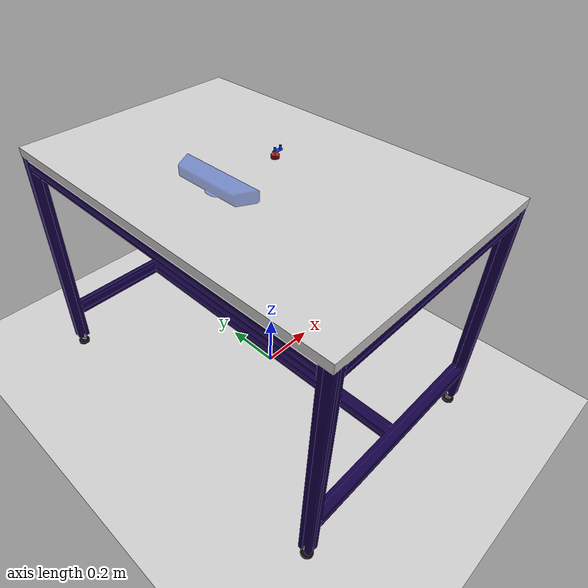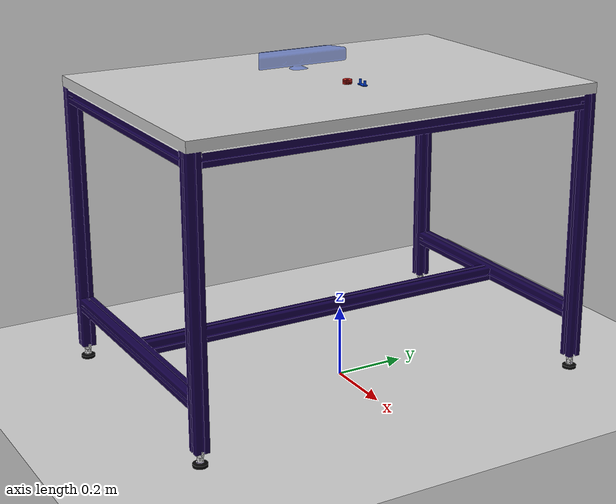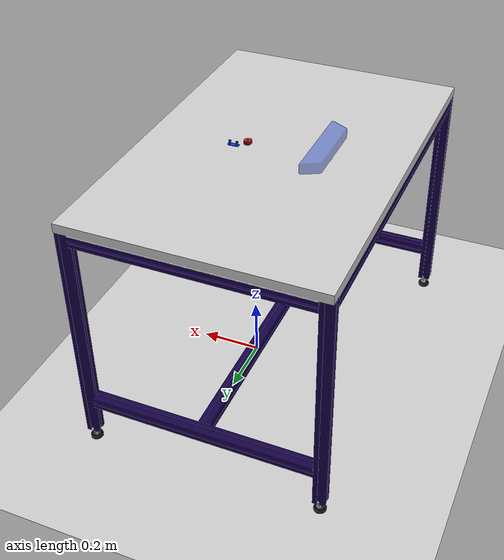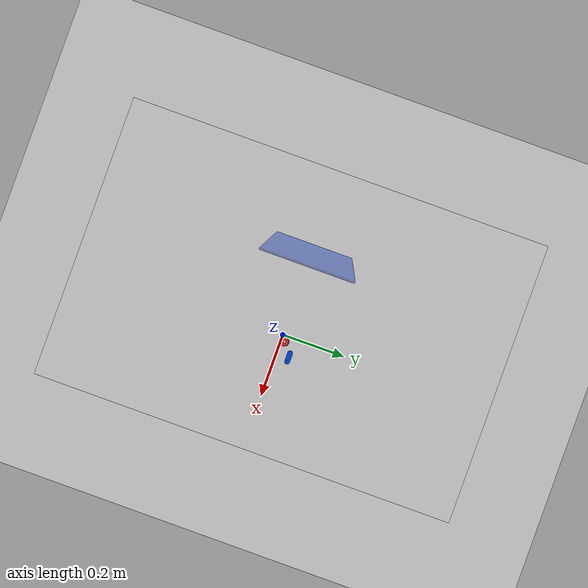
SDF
<?xml version="1.0" ?>
<sdf version='1.6'>
  <world name='default'>

    <!-- Main light Source-->
    <light name='sun' type='directional'>
      <cast_shadows>1</cast_shadows>
      <pose frame=''>0 0 10 0 -0 0</pose>
      <diffuse>0.8 0.8 0.8 1</diffuse>
      <specular>0.1 0.1 0.1 1</specular>
      <attenuation>
        <range>1000</range>
        <constant>0.9</constant>
        <linear>0.01</linear>
        <quadratic>0.001</quadratic>
      </attenuation>
      <direction>-0.5 0.5 -1</direction>
    </light>

    <!-- Ground plane-->
    <model name='ground_plane'>
      <static>1</static>
      <link name='link'>
        <collision name='collision'>
          <geometry>
            <plane>
              <normal>0 0 1</normal>
              <size>100 100</size>
            </plane>
          </geometry>
          <surface>
            <friction>
              <ode>
                <mu>100</mu>
                <mu2>50</mu2>
              </ode>
              <torsional>
                <ode/>
              </torsional>
            </friction>
            <contact>
              <ode/>
            </contact>
            <bounce/>
          </surface>
          <max_contacts>10</max_contacts>
        </collision>
        <visual name='visual'>
          <cast_shadows>0</cast_shadows>
          <geometry>
            <plane>
              <normal>0 0 1</normal>
              <size>100 100</size>
            </plane>
          </geometry>
          <material>
            <script>
              <uri>file://media/materials/scripts/gazebo.material</uri>
              <name>Gazebo/Grey</name>
            </script>
          </material>
        </visual>
        <self_collide>0</self_collide>
        <kinematic>0</kinematic>
        <gravity>1</gravity>
      </link>
    </model>

    <!-- Other settings-->
    <gravity>0 0 -9.8</gravity>
    <magnetic_field>6e-06 2.3e-05 -4.2e-05</magnetic_field>
    <atmosphere type='adiabatic'/>
    <physics name='default_physics' default='0' type='ode'>
      <max_step_size>0.001</max_step_size>
      <real_time_factor>1</real_time_factor>
      <real_time_update_rate>1000</real_time_update_rate>
    </physics>
    <scene>
      <ambient>0.4 0.4 0.4 1</ambient>
      <background>0.7 0.7 0.7 1</background>
      <shadows>1</shadows>
    </scene>
    <spherical_coordinates>
      <surface_model>EARTH_WGS84</surface_model>
      <latitude_deg>0</latitude_deg>
      <longitude_deg>0</longitude_deg>
      <elevation>0</elevation>
      <heading_deg>0</heading_deg>
    </spherical_coordinates>

    <!-- Secondary light Source-->
    <light name='user_point_light_0' type='point'>
      <pose frame=''>0 0 2 0 -0 0</pose>
      <diffuse>0.5 0.5 0.5 1</diffuse>
      <specular>0.1 0.1 0.1 1</specular>
      <attenuation>
        <range>20</range>
        <constant>0.5</constant>
        <linear>0.01</linear>
        <quadratic>0.001</quadratic>
      </attenuation>
      <cast_shadows>0</cast_shadows>
      <direction>0 0 -1</direction>
    </light>

    <model name='kinect_ros'>
      <pose frame=''>-0.20 0 0.87 0 -0 0</pose>
      <link name='link'>
        <inertial>
          <mass>0.1</mass>
        </inertial>
        <collision name='collision'>
          <geometry>
            <box>
              <size>0.073 0.276 0.072</size>
            </box>
          </geometry>
          <max_contacts>10</max_contacts>
          <surface>
            <contact>
              <ode/>
            </contact>
            <bounce/>
            <friction>
              <torsional>
                <ode/>
              </torsional>
              <ode/>
            </friction>
          </surface>
        </collision>
        <visual name='visual'>
          <material>
            <script>
              <name>Gazebo/BlueTransparent</name>
              <uri>file://media/materials/scripts/gazebo.material</uri>
            </script>
          </material>
          <geometry>
            <mesh>
              <uri>model://kinect/meshes/kinect.dae</uri>
            </mesh>
          </geometry>
        </visual>
        <sensor name='camera1' type='depth'>
          <update_rate>20</update_rate>
          <camera name='__default__'>
            <horizontal_fov>1.0472</horizontal_fov>
            <image>
              <width>640</width>
              <height>480</height>
              <format>R8G8B8</format>
            </image>
            <clip>
              <near>0.02</near>
              <far>3</far>
            </clip>
          </camera>
          <plugin name='depth_camera1_plugin' filename='libgazebo_ros_openni_kinect.so'>
            <baseline>0.2</baseline>
            <alwaysOn>true</alwaysOn>
            <updateRate>0.0</updateRate>
            <cameraName>kinect1</cameraName>
            <imageTopicName>color/image_raw</imageTopicName>
            <cameraInfoTopicName>color/camera_info</cameraInfoTopicName>
            <depthImageTopicName>depth/image_raw</depthImageTopicName>
            <depthImageCameraInfoTopicName>color/camera_info</depthImageCameraInfoTopicName>
            <pointCloudTopicName>depth/points</pointCloudTopicName>
            <frameName>kinect1_optical_link</frameName>
            <pointCloudCutoff>0.03</pointCloudCutoff>
            <pointCloudCutoffMax>3</pointCloudCutoffMax>
            <distortionK1>0</distortionK1>
            <distortionK2>0</distortionK2>
            <distortionK3>0</distortionK3>
            <distortionT1>0</distortionT1>
            <distortionT2>0</distortionT2>
            <CxPrime>0</CxPrime>
            <Cx>0</Cx>
            <Cy>0</Cy>
            <focalLength>0</focalLength>
            <hackBaseline>0</hackBaseline>
          </plugin>
        </sensor>
        <self_collide>0</self_collide>
        <kinematic>0</kinematic>
      </link>
      <static>1</static>
      <allow_auto_disable>0</allow_auto_disable>
    </model>

    <!-- Include the objects-->
     <include>
      <uri>model://table1</uri>
      <name>table1</name>
      <pose>-0.475 0 0 0 0 0</pose>
    </include>

     <include>
      <uri>model://left_gear</uri>
      <name>left_gear</name>
      <pose>0 0 0.84 0 0 0</pose>
      <static>1</static>
    </include>

    <include>
      <uri>model://bottom_casing</uri>
      <name>bottom_casing</name>
      <pose>0.03 0.03 0.84 0 0 0</pose>
      <static>1</static>
    </include>

    <gui fullscreen='0'>
      <camera name='user_camera'>
        <pose frame=''>2.16101 -0.608536 1.91511 0 0.589796 2.59702</pose>
        <view_controller>orbit</view_controller>
        <projection_type>perspective</projection_type>
      </camera>
    </gui>
  </world>
</sdf>

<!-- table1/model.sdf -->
<sdf version='1.5'>
  <model name='table1'>
    <static>true</static>
    <link name='table1'>
      <pose frame=''>0 0 0 0 -0 0</pose>
      <inertial>
        <pose frame=''>0 0.04617 0.38 0 -0 0</pose>
        <mass>35.4321</mass>
        <inertia>
          <ixx>1.73083</ixx>
          <ixy>2.01582e-11</ixy>
          <ixz>2.78594e-13</ixz>
          <iyy>5.32936</iyy>
          <iyz>4.32952e-13</iyz>
          <izz>3.81098</izz>
        </inertia>
      </inertial>
      <collision name='table_collision'>
        <pose frame=''>0 0 0 0 -0 0</pose>
        <geometry>
          <mesh>
            <scale>1 1 1</scale>
            <uri>model://table1/meshes/table1.dae</uri>
          </mesh>
        </geometry>
      </collision>
      <visual name='table_visual'>
        <pose frame=''>0 0 0 0 -0 0</pose>
        <geometry>
          <mesh>
            <scale>1 1 1</scale>
            <uri>model://table1/meshes/table1.dae</uri>
          </mesh>
        </geometry>
      </visual>
    </link>
  </model>
</sdf>

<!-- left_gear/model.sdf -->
<sdf version="1.5">
  <model name="left_gear">
    <static>true</static>
    <link name="link">
      <collision name="collision">
        <geometry>
          <mesh>
            <scale>1 1 1</scale>
            <uri>model://left_gear/meshes/left_gear.dae</uri>
          </mesh>
        </geometry>
      </collision>
      <visual name="visual">
        <geometry>
          <mesh>
            <scale>1 1 1</scale>
            <uri>model://left_gear/meshes/left_gear.dae</uri>
          </mesh>
        </geometry>
      </visual>
    </link>
  </model>
</sdf>

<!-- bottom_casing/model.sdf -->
<sdf version="1.5">
  <model name="bottom_casing">
    <static>false</static>
    <link name="link">
      <collision name="collision">
        <geometry>
          <mesh>
            <scale>1 1 1</scale>
            <uri>model://bottom_casing/meshes/bottom_casing.stl</uri>
          </mesh>
        </geometry>
      </collision>
      <visual name="visual">
        <geometry>
          <mesh>
            <scale>1 1 1</scale>
            <uri>model://bottom_casing/meshes/bottom_casing.dae</uri>
          </mesh>
        </geometry>
      </visual>
    </link>
  </model>
</sdf>
